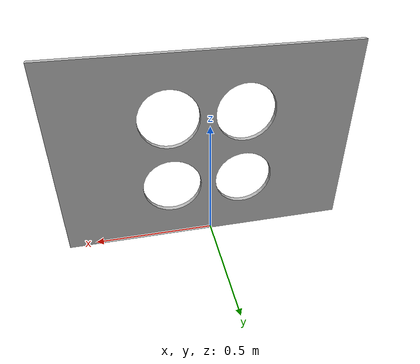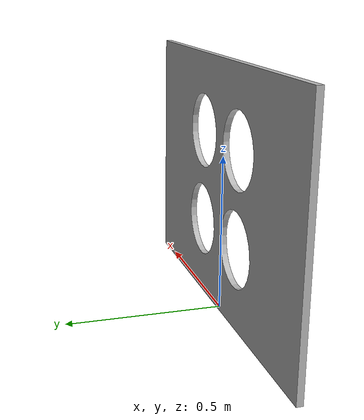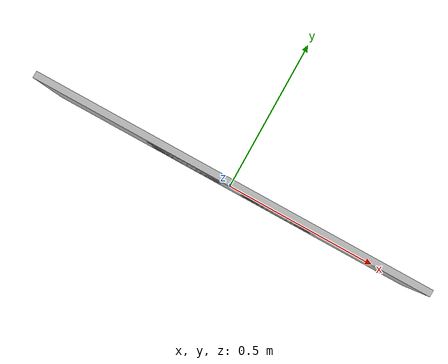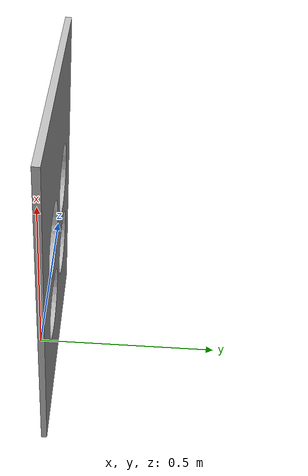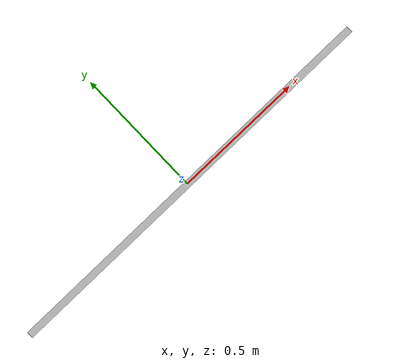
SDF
<?xml version='1.0'?>
<sdf version='1.6'>
  <model name="carlos_board">
      <pose>0.01 0 0 0 0 1.5707963267949</pose>
      <static>true</static>
      <link name="body">
	  	<inertial><mass>1.0</mass></inertial>
        <visual name="visual">
			<pose>0 0 0 0 0 0</pose>
			  <geometry>
				<mesh><uri>model://carlos_board/meshes/carlos_board.dae</uri></mesh>
			  </geometry>
			  <material>
			  	<script>
					<uri>model://carlos_board/materials/scripts</uri>
            		<uri>model://carlos_board/materials/textures</uri>
					<name>Carlos/Maple</name>
				</script>
			</material>
		</visual>
		  <collision name="collision">
			<pose>0 0 0  0 0 0</pose>
			  <geometry>
				<mesh><uri>model://carlos_board/meshes/wood_pattern.stl</uri></mesh>
			  </geometry>
		  </collision>
      </link>
    </model>
</sdf>
